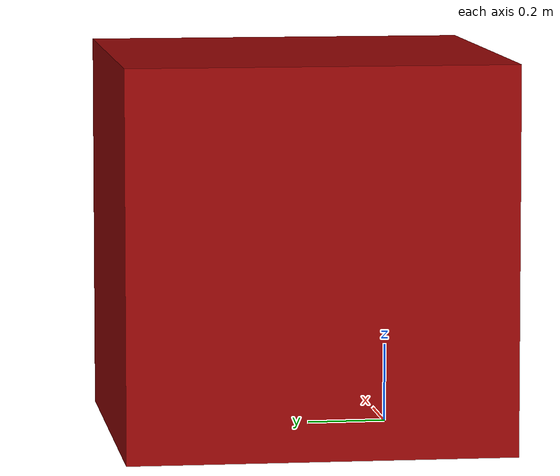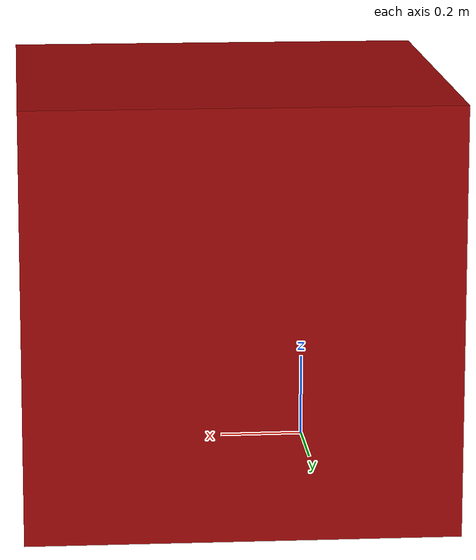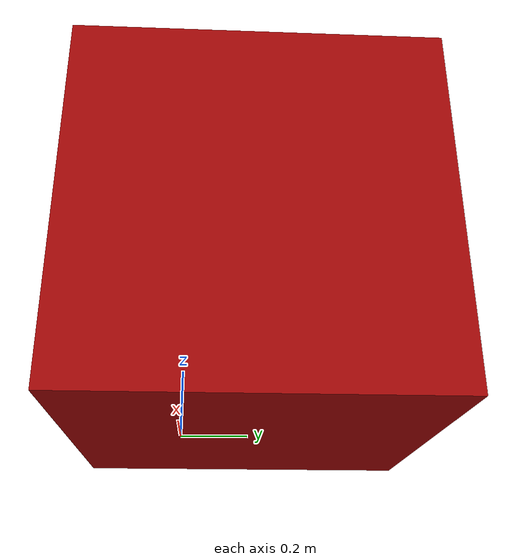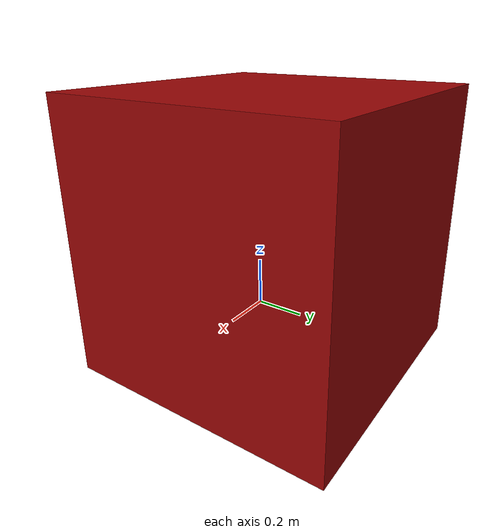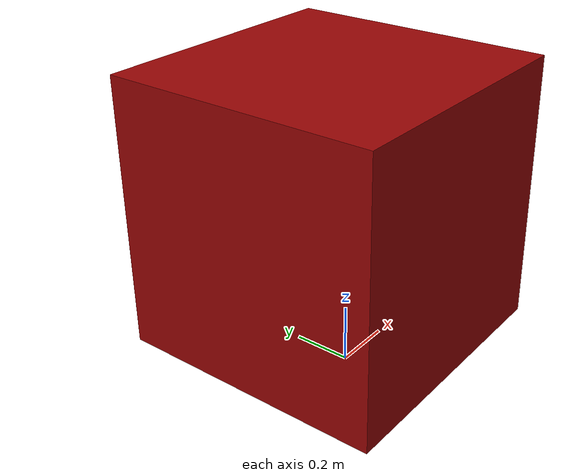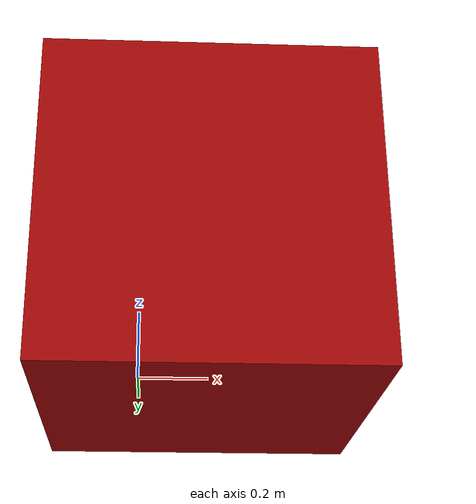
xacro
<?xml version="1.0"?>
<robot xmlns:xacro="http://www.ros.org/wiki/xacro"
  name="robot">
  <link
    name="base_link">
    <inertial>
      <origin
        xyz="0.0227485188690984 -0.00204996608721864 -0.000468889910568399"
        rpy="0 0 0" />
      <mass
        value="104.307293916567" />
      <inertia
        ixx="3.85522334326568"
        ixy="-0.0115971485183534"
        ixz="0.0436205513289232"
        iyy="9.21224718931023"
        iyz="0.0260621162519827"
        izz="6.05412662966756" />
    </inertial>
    <visual>
      <origin
        xyz="0 0 0"
        rpy="0 0 0" />
      <geometry>
        <box size="1.0 1.0 1.0" />
      </geometry>

      <!-- Change MAIN BODY color -->
      <material
        name="red_plastic">
        <color
          rgba="0.6 0.02 0.02 1" />
      </material>

    </visual>
    <collision>
      <origin
        xyz="0 0 0"
        rpy="0 0 0" />
      <geometry>
        <box size="1.0 1.0 1.0" />
      </geometry>
    </collision>
  </link>

  <link name="world"/>
  <joint name="base_joint" type="fixed">
    <parent link="world"/>
    <child link="base_link"/>
    <origin rpy="1.5708 0 0" xyz="0.2 0.2 0.45"/>
  </joint>

  <gazebo>
    <plugin name="control"
      filename="libgazebo_ros_control.so">
      <robotNamespace>/</robotNamespace>
    </plugin>
  </gazebo>

</robot>
